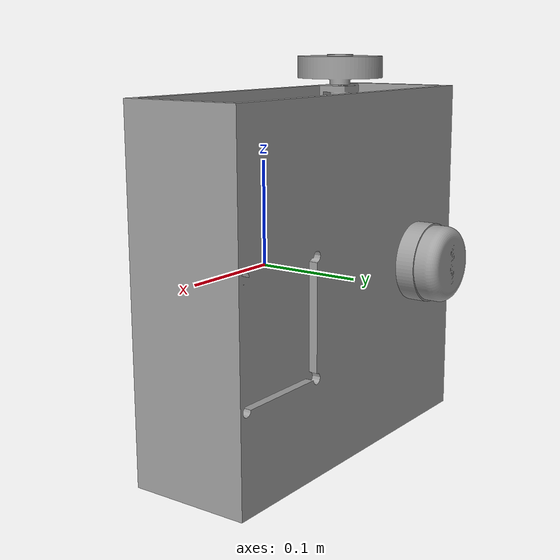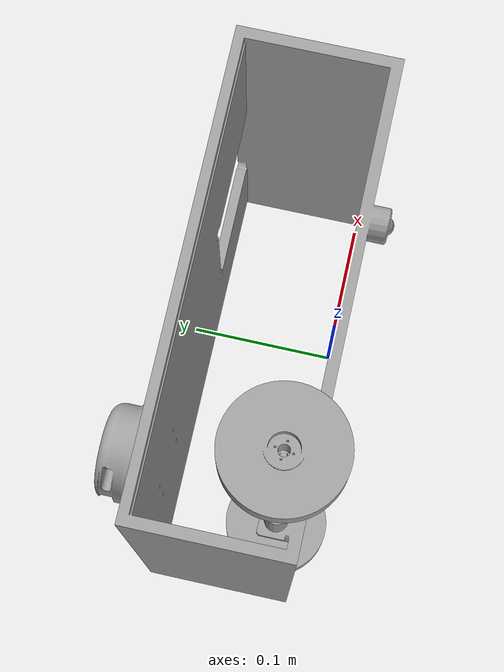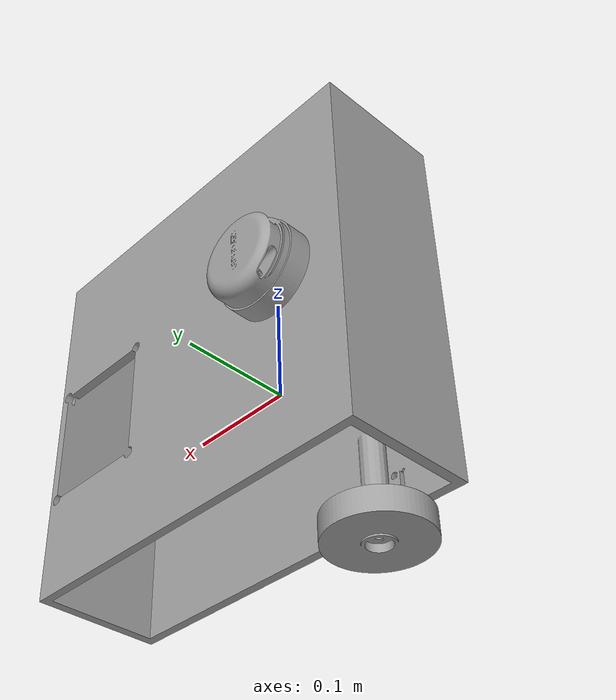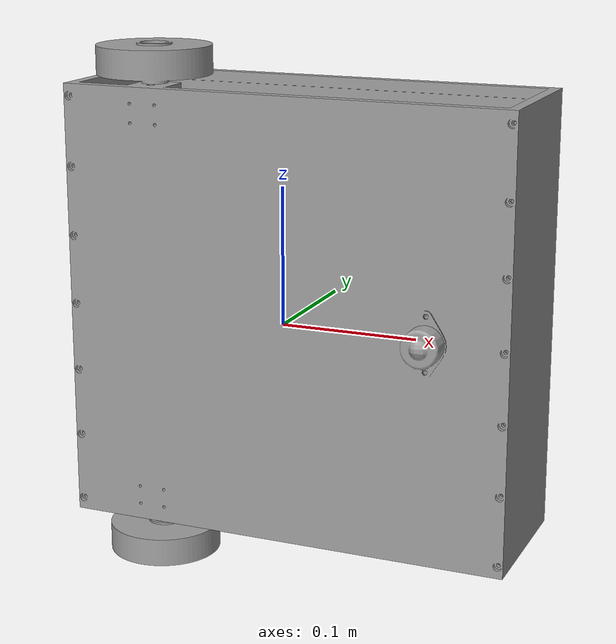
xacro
<?xml version="1.0" ?>
<robot name="ssmm_robot_test" xmlns:xacro="http://www.ros.org/wiki/xacro">

<xacro:include filename="$(find ssmm_robot_test_description)/urdf/materials.xacro" />
<xacro:include filename="$(find ssmm_robot_test_description)/urdf/ssmm_robot_test.trans" />
<xacro:include filename="$(find ssmm_robot_test_description)/urdf/ssmm_robot_test.gazebo" />
<link name="base_link">
  <inertial>
    <origin xyz="-0.005863107158817645 0.04575054627281796 0.0007562083206319891" rpy="0 0 0"/>
    <mass value="17.87189983413398"/>
    <inertia ixx="0.211334" iyy="0.411846" izz="0.283613" ixy="0.003467" iyz="-0.000758" ixz="-0.001619"/>
  </inertial>
  <visual>
    <origin xyz="0 0 0" rpy="0 0 0"/>
    <geometry>
      <mesh filename="file://$(find ssmm_robot_test_description)/meshes/base_link.stl" scale="0.001 0.001 0.001"/>
    </geometry>
    <material name="Steel-Satin"/>
  </visual>
  <collision>
    <origin xyz="0 0 0" rpy="0 0 0"/>
    <geometry>
      <mesh filename="file://$(find ssmm_robot_test_description)/meshes/base_link.stl" scale="0.001 0.001 0.001"/>
    </geometry>
  </collision>
</link>

<link name="right_wheel_1">
  <inertial>
    <origin xyz="-5.182139952986109e-07 2.113675778504104e-06 -0.010701855614137695" rpy="0 0 0"/>
    <mass value="0.9090455014442554"/>
    <inertia ixx="0.000439" iyy="0.000439" izz="0.000806" ixy="-0.0" iyz="-0.0" ixz="0.0"/>
  </inertial>
  <visual>
    <origin xyz="0.1065 -0.013805 0.172" rpy="0 0 0"/>
    <geometry>
      <mesh filename="file://$(find ssmm_robot_test_description)/meshes/right_wheel_1.stl" scale="0.001 0.001 0.001"/>
    </geometry>
    <material name="Steel-Satin"/>
  </visual>
  <collision>
    <origin xyz="0.1065 -0.013805 0.172" rpy="0 0 0"/>
    <geometry>
      <mesh filename="file://$(find ssmm_robot_test_description)/meshes/right_wheel_1.stl" scale="0.001 0.001 0.001"/>
    </geometry>
  </collision>
</link>

<link name="left_wheel_1">
  <inertial>
    <origin xyz="1.704472623959008e-06 2.2303272756776793e-07 0.010701855614138278" rpy="0 0 0"/>
    <mass value="0.9090455014442554"/>
    <inertia ixx="0.000439" iyy="0.000439" izz="0.000806" ixy="-0.0" iyz="-0.0" ixz="0.0"/>
  </inertial>
  <visual>
    <origin xyz="0.1065 -0.013805 -0.172" rpy="0 0 0"/>
    <geometry>
      <mesh filename="file://$(find ssmm_robot_test_description)/meshes/left_wheel_1.stl" scale="0.001 0.001 0.001"/>
    </geometry>
    <material name="Steel-Satin"/>
  </visual>
  <collision>
    <origin xyz="0.1065 -0.013805 -0.172" rpy="0 0 0"/>
    <geometry>
      <mesh filename="file://$(find ssmm_robot_test_description)/meshes/left_wheel_1.stl" scale="0.001 0.001 0.001"/>
    </geometry>
  </collision>
</link>

<link name="lidar_1">
  <inertial>
    <origin xyz="0.02184456766960491 0.01847175439835766 -0.020891965661404416" rpy="0 0 0"/>
    <mass value="1.2417406970778717"/>
    <inertia ixx="0.00057" iyy="0.000824" izz="0.000571" ixy="-1.4e-05" iyz="0.0" ixz="-0.0"/>
  </inertial>
  <visual>
    <origin xyz="0.12286 -0.105805 -0.02086" rpy="0 0 0"/>
    <geometry>
      <mesh filename="file://$(find ssmm_robot_test_description)/meshes/lidar_1.stl" scale="0.001 0.001 0.001"/>
    </geometry>
    <material name="Steel-Satin"/>
  </visual>
  <collision>
    <origin xyz="0.12286 -0.105805 -0.02086" rpy="0 0 0"/>
    <geometry>
      <mesh filename="file://$(find ssmm_robot_test_description)/meshes/lidar_1.stl" scale="0.001 0.001 0.001"/>
    </geometry>
  </collision>
</link>

<joint name="Rev11" type="continuous">
  <origin xyz="-0.1065 0.013805 -0.172" rpy="0 0 0"/>
  <parent link="base_link"/>
  <child link="right_wheel_1"/>
  <axis xyz="-0.0 0.0 1.0"/>
</joint>

<joint name="Rev12" type="continuous">
  <origin xyz="-0.1065 0.013805 0.172" rpy="0 0 0"/>
  <parent link="base_link"/>
  <child link="left_wheel_1"/>
  <axis xyz="0.0 -0.0 -1.0"/>
</joint>

<joint name="Rigid14" type="fixed">
  <origin xyz="-0.12286 0.105805 0.02086" rpy="0 0 0"/>
  <parent link="base_link"/>
  <child link="lidar_1"/>
</joint>

</robot>

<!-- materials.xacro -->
<robot name="ssmm_robot_test" xmlns:xacro="http://www.ros.org/wiki/xacro" >

  <material name="Steel-Satin">
    <color rgba="0.627 0.627 0.627 1.0"/>
  </material>

</robot>

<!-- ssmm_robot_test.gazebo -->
<robot name="ssmm_robot_test" xmlns:xacro="http://www.ros.org/wiki/xacro" >

<xacro:property name="body_color" value="Gazebo/Silver" />

<gazebo>
  <plugin name="control" filename="libgazebo_ros_control.so"/>
</gazebo>
<gazebo reference="base_link">
  <material>${body_color}</material>
  <mu1>0.2</mu1>
  <mu2>0.2</mu2>
  <self_collide>true</self_collide>
  <gravity>true</gravity>
</gazebo>

<gazebo reference="right_wheel_1">
  <material>${body_color}</material>
  <mu1>0.2</mu1>
  <mu2>0.2</mu2>
  <self_collide>true</self_collide>
</gazebo>

<gazebo reference="left_wheel_1">
  <material>${body_color}</material>
  <mu1>0.2</mu1>
  <mu2>0.2</mu2>
  <self_collide>true</self_collide>
</gazebo>

<gazebo reference="lidar_1">
  <material>${body_color}</material>
  <mu1>0.2</mu1>
  <mu2>0.2</mu2>
  <self_collide>true</self_collide>
</gazebo>

</robot>
